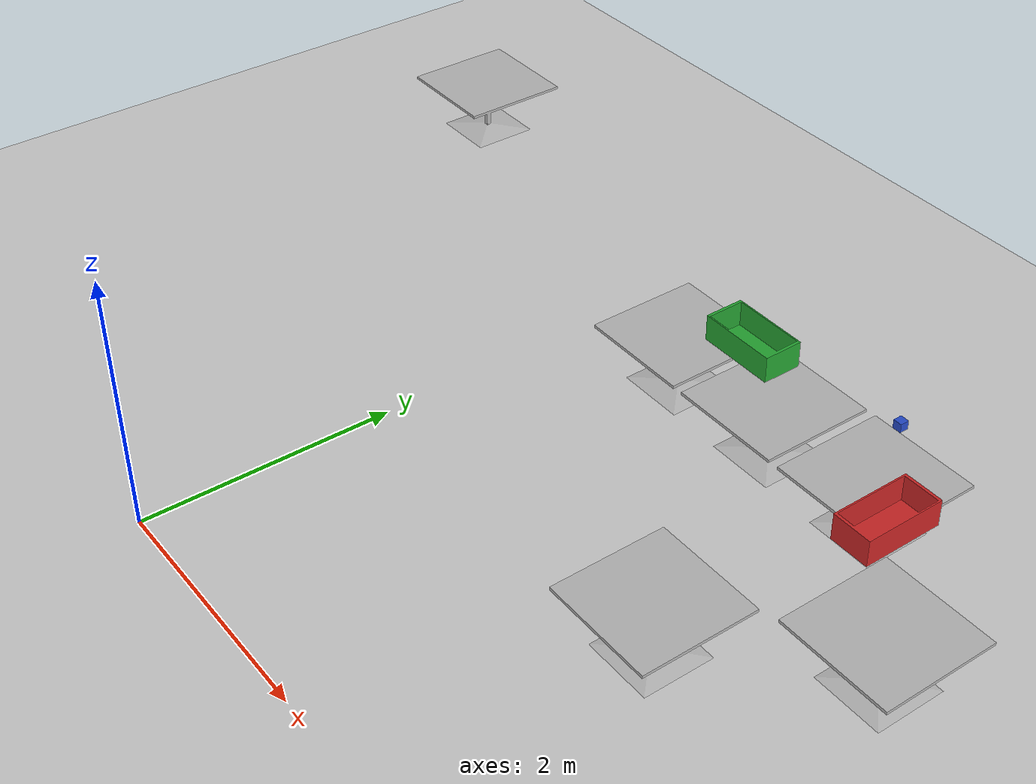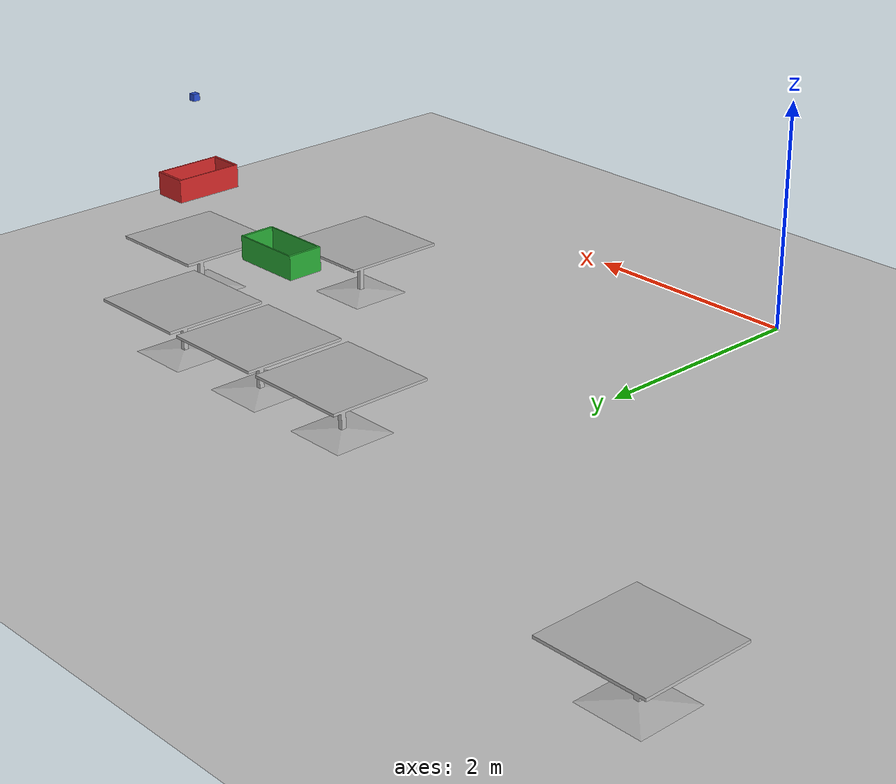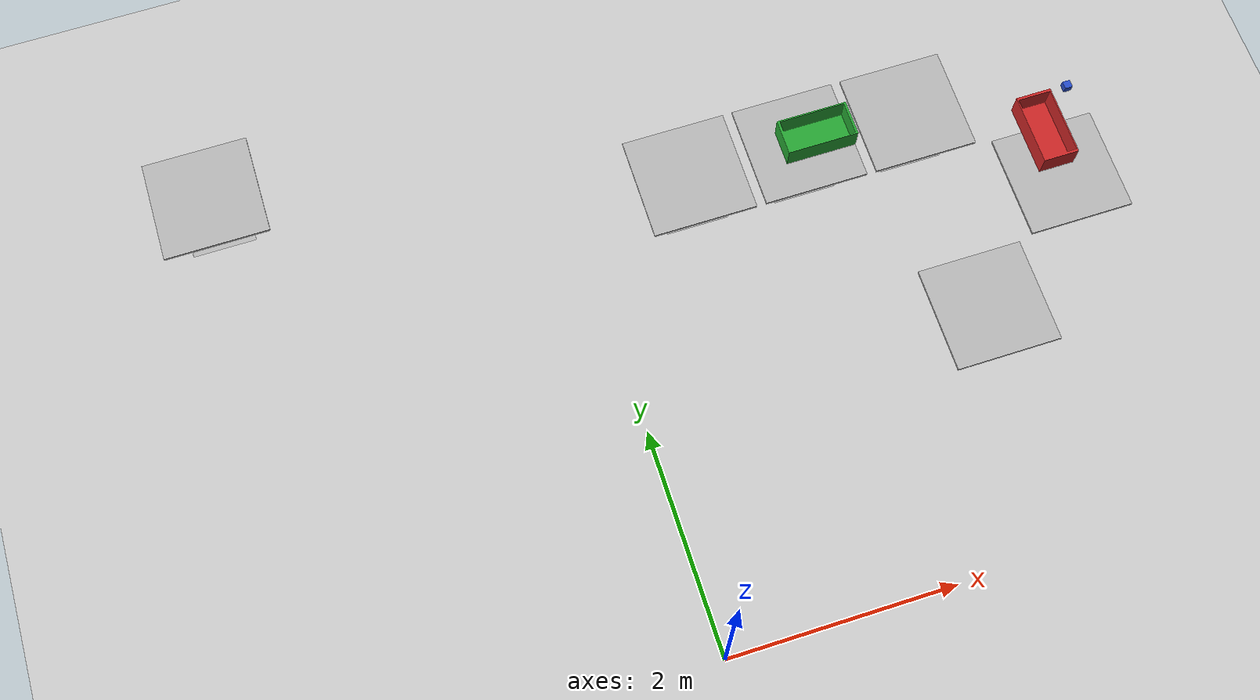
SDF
<?xml version="1.0" ?>
<sdf version="1.4">
  <world name="default">

    <include>
      <uri>model://ground_plane</uri>
    </include>
    <include>
      <uri>model://sun</uri>
    </include>

    <!-- Table 1 - behind the robot -->
    <include>
      <uri>model://cafe_table</uri>
      <name>table1</name>
      <pose>-3 5 0 0 0 1.57</pose>
    </include>

    <!-- Table 2 - forward-left of robot, top is 0.91m square -->
    <include>
      <uri>model://cafe_table</uri>
      <name>table2</name>
      <pose>4.05 3 0 0 0 1.57</pose>
    </include>

    <!-- Object on table 2 -->
    <include>
      <uri>model://demo_cube</uri>
      <pose>3.8 3.15 1.83 0 0 0</pose> <!-- orig height was 0.83 -->
    </include>
    <include>
      <name>bin1</name>
      <uri>model://rect_bin_orange</uri>
      <pose>3.8 3.15 1.0 0 0 0</pose>
    </include>

    <!-- 3 x tables on left side -->
    <include>
      <uri>model://cafe_table</uri>
      <name>table3</name>
      <pose>3.0 3.95 0 0 0 1.57</pose>
    </include>
    <include>
      <uri>model://cafe_table</uri>
      <name>table4</name>
      <pose>2.0 3.95 0 0 0 1.57</pose>
    </include>
    <include>
      <uri>model://cafe_table</uri>
      <name>table5</name>
      <pose>1.0 3.95 0 0 0 1.57</pose>
    </include>

    <!-- table on right side -->
    <include>
      <uri>model://cafe_table</uri>
      <name>table7</name>
      <pose>3.0 2.05 0 0 0 1.57</pose>
    </include>

    <include>
      <name>bin2</name>
      <uri>model://rect_bin_green</uri>
      <pose>2.0 3.7 1.0 0 0 1.57</pose>
    </include>

  </world>
</sdf>

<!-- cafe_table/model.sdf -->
<sdf version="1.5">
  <model name="cafe_table">
    <static>true</static>
    <link name="link">
      <collision name="surface">
        <pose>0 0 0.45 0 0 0</pose>
        <geometry>
          <box>
            <size>0.913 0.913 0.035</size>
          </box>
        </geometry>
      </collision>

      <collision name="column">
        <pose>0 0 0.37 0 0 0</pose>
        <geometry>
          <box>
            <size>0.042 0.042 0.15</size>
          </box>
        </geometry>
      </collision>

      <collision name="base">
        <pose>0 0 0.02 0 0 0</pose>
        <geometry>
          <box>
            <size>0.56 0.56 0.04</size>
          </box>
        </geometry>
      </collision>

      <visual name="visual">
        <geometry>
          <mesh>
            <scale>1 1 0.6</scale>
            <uri>file://isr-testbed/cafe_table/meshes/cafe_table.dae</uri>
          </mesh>
        </geometry>
      </visual>
    </link>
  </model>
</sdf>

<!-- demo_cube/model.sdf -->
<sdf version='1.6'>
  <model name="demo_cube">
      <static>0</static>
      <link name='link'>
        <inertial>
          <mass>0.25</mass>
          <inertia>
            <ixx>0.001</ixx>
            <ixy>0.000000</ixy>
            <ixz>0.000000</ixz>
            <iyy>0.001</iyy>
            <iyz>0.000000</iyz>
            <izz>0.001</izz>
          </inertia>
        </inertial>
        <collision name='collision'>
          <geometry>
            <box>
              <size>0.060 0.060 0.060</size>
            </box>
          </geometry>
          <surface>
            <friction>
              <ode>
                <mu>30.0</mu>
                <mu2>30.0</mu2>
              </ode>
            </friction>
            <contact>
              <ode>
                <kp>1000000.0</kp>
                <kd>100.0</kd>
                <max_vel>1.0</max_vel>
                <min_depth>0.002</min_depth>
              </ode>
            </contact>
          </surface>
        </collision>
        <visual name='visual'>
          <geometry>
            <box>
              <size>0.060 0.060 0.060</size>
            </box>
          </geometry>
          <material>
            <script>
              <uri>file://media/materials/scripts/gazebo.material</uri>
              <name>Gazebo/Blue</name>
            </script>
          </material>
        </visual>
        <velocity_decay>
          <linear>0.000000</linear>
          <angular>0.000000</angular>
        </velocity_decay>
        <self_collide>0</self_collide>
        <kinematic>0</kinematic>
        <gravity>1</gravity>
      </link>
  </model>
</sdf>

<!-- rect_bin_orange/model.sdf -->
<sdf version="1.4">
  <model name="rect_bin_orange">

    <static>false</static>

    <link name="link">

      <collision name="collision">
        <pose>0 0 0 0 0 0</pose>
        <geometry>
          <mesh>
            <uri>model://rect_bin_orange/meshes/dropbox.dae</uri>
          </mesh>
        </geometry>
      </collision>

      <visual name="visual">
        <geometry>
          <mesh>
            <uri>model://rect_bin_orange/meshes/dropbox.dae</uri>
          </mesh>
        </geometry>
        <material>
          <script>
            <uri>file://media/materials/scripts/gazebo.material</uri>
            <name>Gazebo/Red</name>
          </script>
        </material>
      </visual>

    </link>

  </model>
</sdf>

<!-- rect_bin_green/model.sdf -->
<sdf version="1.4">
  <model name="rect_bin_green">

    <static>false</static>

    <link name="link">

      <collision name="collision">
        <pose>0 0 0 0 0 0</pose>
        <geometry>
          <mesh>
            <uri>model://rect_bin_green/meshes/dropbox.dae</uri>
          </mesh>
        </geometry>
      </collision>

      <visual name="visual">
        <geometry>
          <mesh>
            <uri>model://rect_bin_green/meshes/dropbox.dae</uri>
          </mesh>
        </geometry>
        <material>
          <script>
            <uri>file://media/materials/scripts/gazebo.material</uri>
            <name>Gazebo/Green</name>
          </script>
        </material>
      </visual>

    </link>

  </model>
</sdf>
